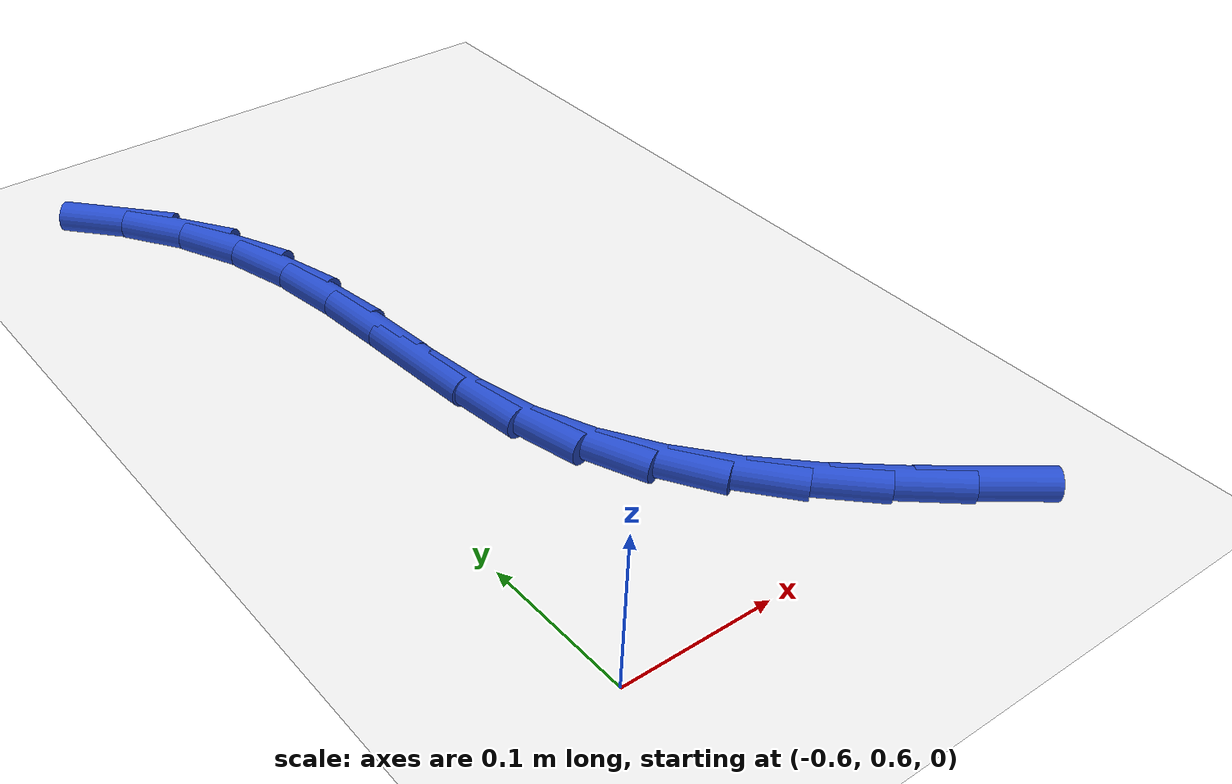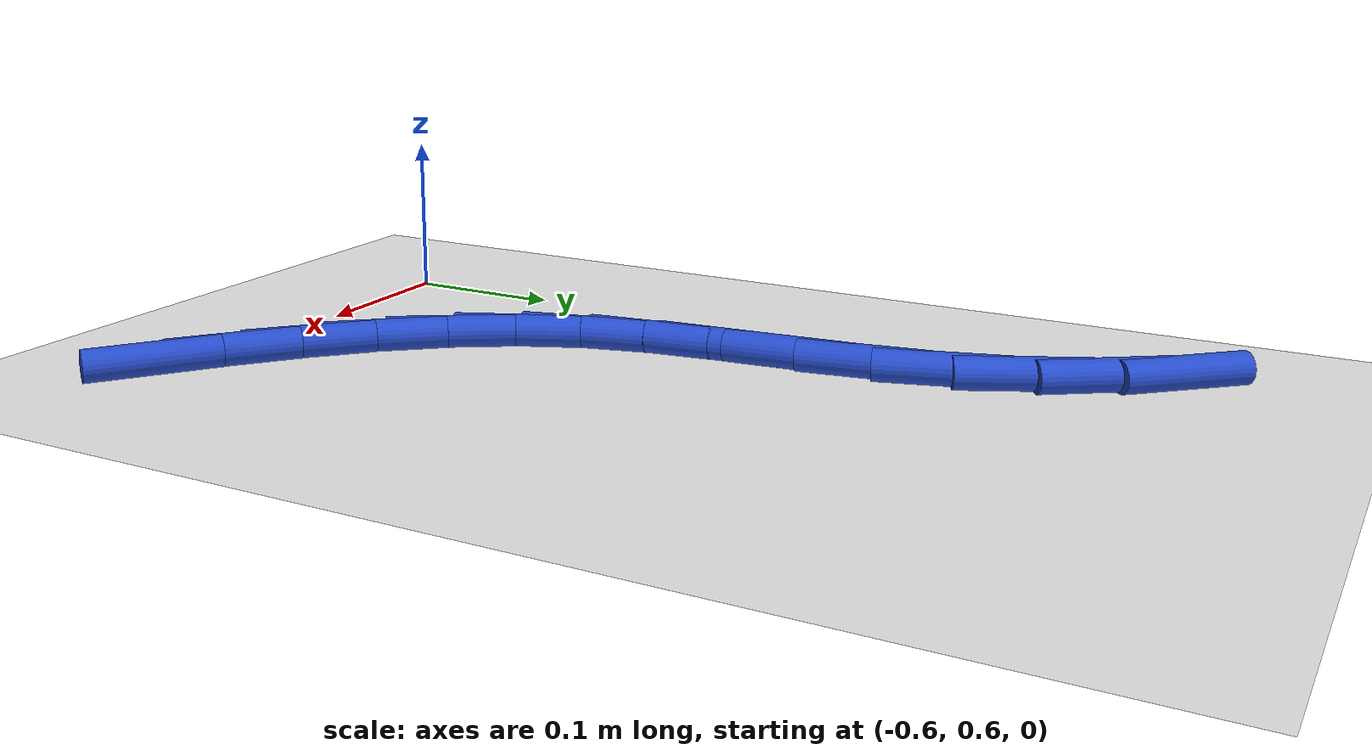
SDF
<sdf version="1.6">
 <world name="default">
  <model name="ground_plane">
   <static>1</static>
   <link name="link">
    <collision name="collision">
     <geometry><plane><normal>0 0 1</normal><size>100 100</size></plane></geometry>
     <surface><friction><ode><mu>100</mu><mu2>50</mu2></ode></friction></surface>
    </collision>
    <visual name="visual">
     <cast_shadows>0</cast_shadows>
     <geometry><plane><normal>0 0 1</normal><size>100 100</size></plane></geometry>
     <material>
      <script><uri>file://media/materials/scripts/gazebo.material</uri><name>Gazebo/WhiteGlow</name></script>
     </material>
    </visual>
   </link>
  </model>
  <model name="line">
   <link name="link_16">
    <pose>-0.34947192446441117 0.5873376691982429 0.01 0 1.57 -0.648370644125655</pose>
    <collision name="collision">
     <geometry><cylinder><radius>0.01</radius><length>0.08</length></cylinder></geometry>
    </collision>
    <visual name="visual">
     <material>
      <script><name>Gazebo/Blue</name><uri>file://media/materials/scripts/gazebo.material</uri></script>
     </material>
     <geometry><cylinder><radius>0.01</radius><length>0.08</length></cylinder></geometry>
    </visual>
   </link>
   <link name="link_17">
    <pose>-0.3864933641835222 0.6153864668895259 0.01 0 1.57 -0.7010191977605005</pose>
    <collision name="collision">
     <geometry><cylinder><radius>0.01</radius><length>0.08</length></cylinder></geometry>
    </collision>
    <visual name="visual">
     <material>
      <script><name>Gazebo/Blue</name><uri>file://media/materials/scripts/gazebo.material</uri></script>
     </material>
     <geometry><cylinder><radius>0.01</radius><length>0.08</length></cylinder></geometry>
    </visual>
   </link>
   <link name="link_18">
    <pose>-0.42104999194184634 0.6445533715520524 0.01 0 1.57 -0.7769612380447642</pose>
    <collision name="collision">
     <geometry><cylinder><radius>0.01</radius><length>0.08</length></cylinder></geometry>
    </collision>
    <visual name="visual">
     <material>
      <script><name>Gazebo/Blue</name><uri>file://media/materials/scripts/gazebo.material</uri></script>
     </material>
     <geometry><cylinder><radius>0.01</radius><length>0.08</length></cylinder></geometry>
    </visual>
   </link>
   <link name="link_19">
    <pose>-0.4523016454367913 0.6752820888771678 0.01 0 1.57 -0.8791672863578113</pose>
    <collision name="collision">
     <geometry><cylinder><radius>0.01</radius><length>0.08</length></cylinder></geometry>
    </collision>
    <visual name="visual">
     <material>
      <script><name>Gazebo/Blue</name><uri>file://media/materials/scripts/gazebo.material</uri></script>
     </material>
     <geometry><cylinder><radius>0.01</radius><length>0.08</length></cylinder></geometry>
    </visual>
   </link>
   <link name="link_20">
    <pose>-0.4794081623657659 0.7080163245562194 0.01 0 1.57 -1.009512712170234</pose>
    <collision name="collision">
     <geometry><cylinder><radius>0.01</radius><length>0.08</length></cylinder></geometry>
    </collision>
    <visual name="visual">
     <material>
      <script><name>Gazebo/Blue</name><uri>file://media/materials/scripts/gazebo.material</uri></script>
     </material>
     <geometry><cylinder><radius>0.01</radius><length>0.08</length></cylinder></geometry>
    </visual>
   </link>
   <link name="link_21">
    <pose>-0.5015293804261778 0.7431997842805529 0.01 0 1.57 -1.166408215397185</pose>
    <collision name="collision">
     <geometry><cylinder><radius>0.01</radius><length>0.08</length></cylinder></geometry>
    </collision>
    <visual name="visual">
     <material>
      <script><name>Gazebo/Blue</name><uri>file://media/materials/scripts/gazebo.material</uri></script>
     </material>
     <geometry><cylinder><radius>0.01</radius><length>0.08</length></cylinder></geometry>
    </visual>
   </link>
   <link name="link_22">
    <pose>-0.5178251373161454 0.7812761737412091 0.01 0 1.57 -1.328679591865516</pose>
    <collision name="collision">
     <geometry><cylinder><radius>0.01</radius><length>0.08</length></cylinder></geometry>
    </collision>
    <visual name="visual">
     <material>
      <script><name>Gazebo/Blue</name><uri>file://media/materials/scripts/gazebo.material</uri></script>
     </material>
     <geometry><cylinder><radius>0.01</radius><length>0.08</length></cylinder></geometry>
    </visual>
   </link>
   <link name="link_23">
    <pose>-0.5279951064135744 0.8224565786669649 0.01 0 1.57 -1.4362827417552126</pose>
    <collision name="collision">
     <geometry><cylinder><radius>0.01</radius><length>0.08</length></cylinder></geometry>
    </collision>
    <visual name="visual">
     <material>
      <script><name>Gazebo/Blue</name><uri>file://media/materials/scripts/gazebo.material</uri></script>
     </material>
     <geometry><cylinder><radius>0.01</radius><length>0.08</length></cylinder></geometry>
    </visual>
   </link>
   <link name="link_24">
    <pose>-0.5338912096270387 0.866024661886013 0.01 0 1.57 -1.4819263324855885</pose>
    <collision name="collision">
     <geometry><cylinder><radius>0.01</radius><length>0.08</length></cylinder></geometry>
    </collision>
    <visual name="visual">
     <material>
      <script><name>Gazebo/Blue</name><uri>file://media/materials/scripts/gazebo.material</uri></script>
     </material>
     <geometry><cylinder><radius>0.01</radius><length>0.08</length></cylinder></geometry>
    </visual>
   </link>
   <link name="link_25">
    <pose>-0.5379016632734943 0.9110329922294088 0.01 0 1.57 -1.4719349049685204</pose>
    <collision name="collision">
     <geometry><cylinder><radius>0.01</radius><length>0.08</length></cylinder></geometry>
    </collision>
    <visual name="visual">
     <material>
      <script><name>Gazebo/Blue</name><uri>file://media/materials/scripts/gazebo.material</uri></script>
     </material>
     <geometry><cylinder><radius>0.01</radius><length>0.08</length></cylinder></geometry>
    </visual>
   </link>
   <link name="link_26">
    <pose>-0.5424146836698962 0.9565341385282068 0.01 0 1.57 -1.4078937691609754</pose>
    <collision name="collision">
     <geometry><cylinder><radius>0.01</radius><length>0.08</length></cylinder></geometry>
    </collision>
    <visual name="visual">
     <material>
      <script><name>Gazebo/Blue</name><uri>file://media/materials/scripts/gazebo.material</uri></script>
     </material>
     <geometry><cylinder><radius>0.01</radius><length>0.08</length></cylinder></geometry>
    </visual>
   </link>
   <link name="link_27">
    <pose>-0.5498184871332 1.0015806696134621 0.01 0 1.57 -1.2879919824715333</pose>
    <collision name="collision">
     <geometry><cylinder><radius>0.01</radius><length>0.08</length></cylinder></geometry>
    </collision>
    <visual name="visual">
     <material>
      <script><name>Gazebo/Blue</name><uri>file://media/materials/scripts/gazebo.material</uri></script>
     </material>
     <geometry><cylinder><radius>0.01</radius><length>0.08</length></cylinder></geometry>
    </visual>
   </link>
   <link name="link_28">
    <pose>-0.5625012705173579 1.0452251580667087 0.01 0 1.57 -1.125641293259757</pose>
    <collision name="collision">
     <geometry><cylinder><radius>0.01</radius><length>0.08</length></cylinder></geometry>
    </collision>
    <visual name="visual">
     <material>
      <script><name>Gazebo/Blue</name><uri>file://media/materials/scripts/gazebo.material</uri></script>
     </material>
     <geometry><cylinder><radius>0.01</radius><length>0.08</length></cylinder></geometry>
    </visual>
   </link>
   <link name="link_29">
    <pose>-0.5822574438572454 1.0866345979135643 0.01 0 1.57 -0.971526408927184</pose>
    <collision name="collision">
     <geometry><cylinder><radius>0.01</radius><length>0.08</length></cylinder></geometry>
    </collision>
    <visual name="visual">
     <material>
      <script><name>Gazebo/Blue</name><uri>file://media/materials/scripts/gazebo.material</uri></script>
     </material>
     <geometry><cylinder><radius>0.01</radius><length>0.08</length></cylinder></geometry>
    </visual>
   </link>
   <link name="link_30">
    <pose>-0.6087302687905483 1.1253905048533117 0.01 0 1.57 -0.835734269011406</pose>
    <collision name="collision">
     <geometry><cylinder><radius>0.01</radius><length>0.08</length></cylinder></geometry>
    </collision>
    <visual name="visual">
     <material>
      <script><name>Gazebo/Blue</name><uri>file://media/materials/scripts/gazebo.material</uri></script>
     </material>
     <geometry><cylinder><radius>0.01</radius><length>0.08</length></cylinder></geometry>
    </visual>
   </link>
  </model>
 </world>
</sdf>
